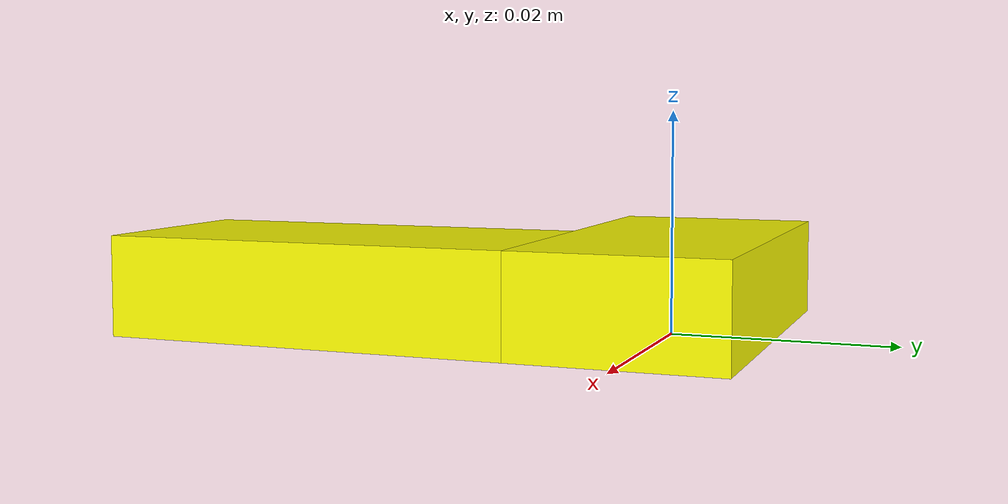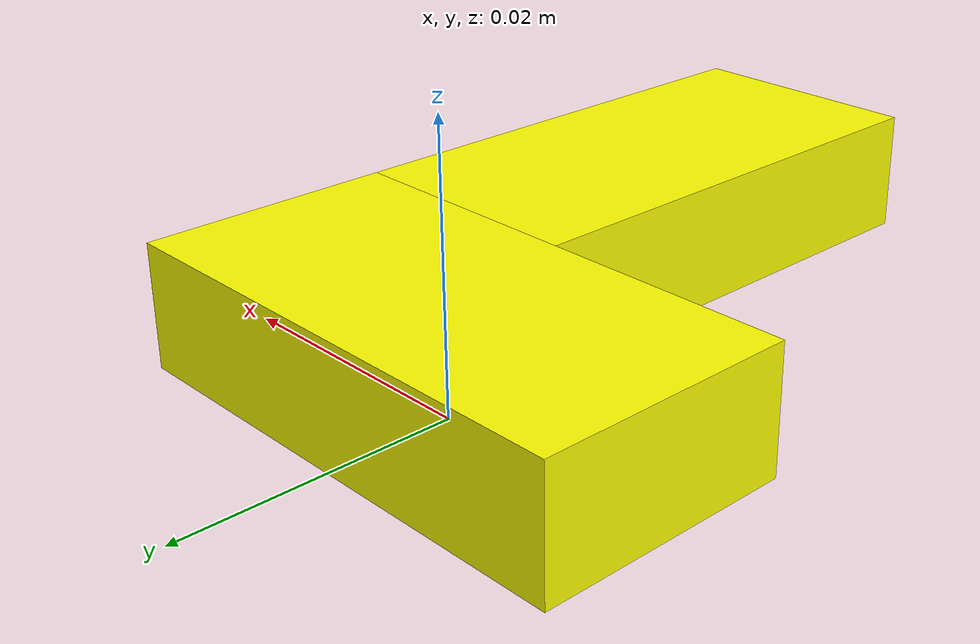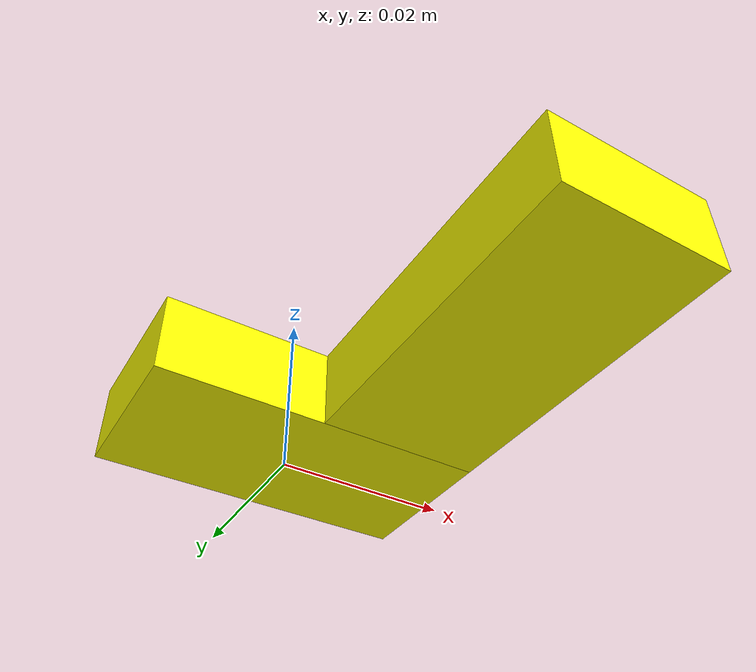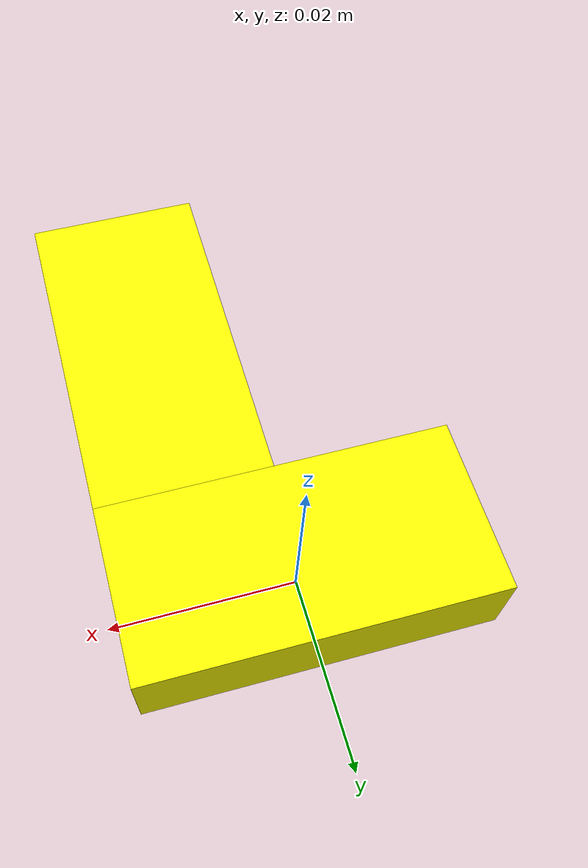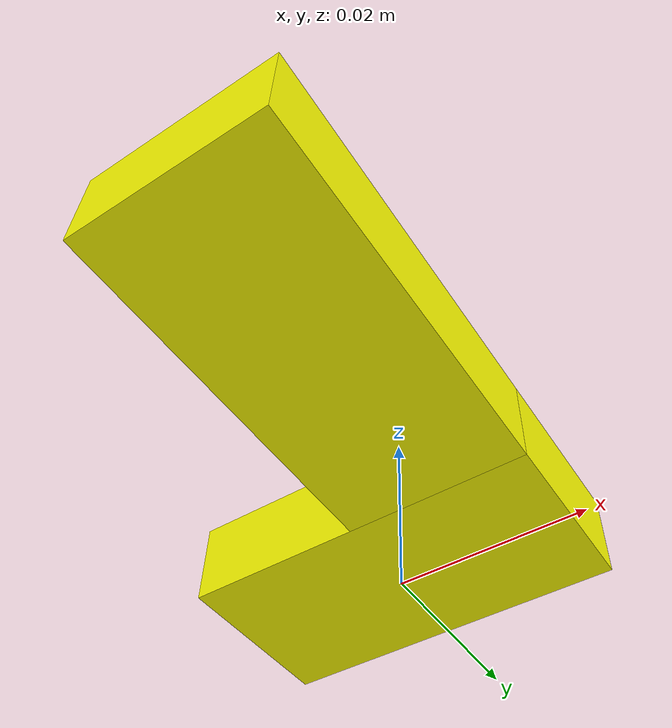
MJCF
<mujoco>
  <compiler angle="radian" autolimits="true"/>
  <worldbody>
    <geom type="box" size="0.0185 0.00925 0.0045" pos="0 0 0.0045" rgba="1 1 0 1" density="1000"/>
    <geom type="box" size="0.00925 0.0185 0.0045" pos="0.00925 -0.02775 0.0045" rgba="1 1 0 1" density="1000"/>
  </worldbody>
</mujoco>
